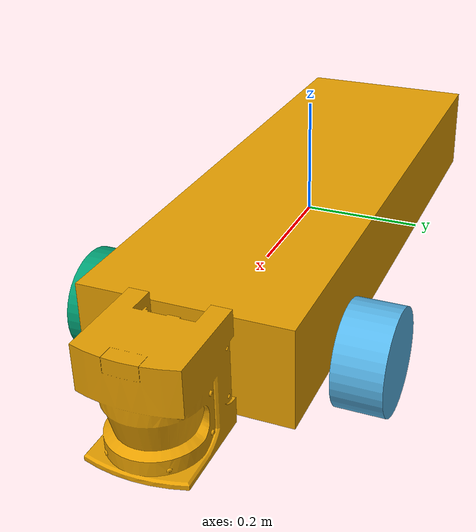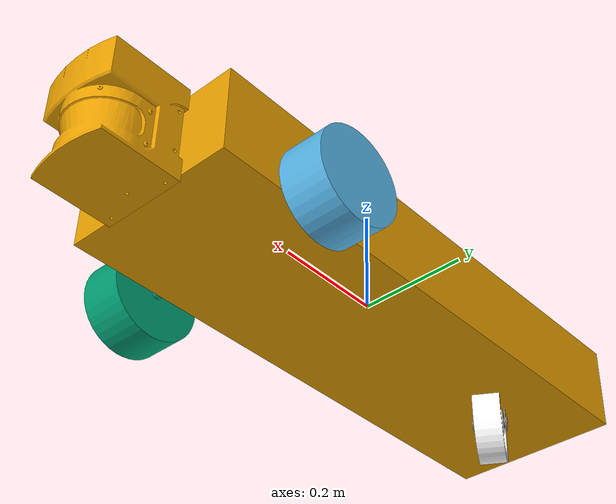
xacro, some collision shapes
<?xml version="1.0" encoding="utf-8"?>
<robot
  name="differentialRobot"  xmlns:xacro="http://www.ros.org/wiki/xacro">

  <xacro:include filename="$(find robot_description)/urdf/differential/macros.xacro" />

  <xacro:property name="PI" value="3.1415926535897931"/>

  <xacro:property name="base_X" value="1.0"/>
  <xacro:property name="base_Y" value="0.33"/>
  <xacro:property name="base_Z" value="0.16"/>
  <xacro:property name="base_Mass" value="20"/>

  <xacro:property name="laser_X" value="0.156"/>
  <xacro:property name="laser_Y" value="0.155"/>
  <xacro:property name="laser_Z" value="0.185"/>

  <xacro:property name="wheel_Width" value="0.1"/>
  <xacro:property name="wheel_Radius" value="0.11007"/>
  <xacro:property name="wheelPos_X" value="0.32"/>
  <xacro:property name="wheelPos_Z" value="-0.065"/>
  <xacro:property name="wheelMass" value="5"/>

   <link name="base_link">

    <visual>
      <origin xyz="0 0 0" rpy="0 0 0"/>
      <geometry>
         <mesh
          filename="package://robot_description/meshes/base_link.STL" />
      </geometry>
    </visual>

     <collision>
      <origin xyz="0 0 0" rpy="0 0 0"/>
      <geometry>
	      <box size="${base_X} ${base_Y} ${base_Z}"/>
      </geometry>
    </collision>

    <inertial>
      <origin xyz="0 0 0" rpy="0 0 0"/>
      <mass value="${base_Mass}"/>
      <box_inertia m="${base_Mass}" x="${base_X}" y="${base_Y}" z="${base_Z}"/>
    </inertial>

  </link>

  <wheel lr="left" tY="1"/>
  <wheel lr="right" tY="-1"/>

<link
    name="base_c_link">
    <inertial>
      <origin
        xyz="5.5511E-17 0.002282 4.7425E-17"
        rpy="0 0 0" />
      <mass
        value="0.53523" />
      <inertia
        ixx="0.00052562"
        ixy="4.0805E-21"
        ixz="3.7312E-19"
        iyy="0.0012519"
        iyz="-9.5907E-21"
        izz="0.000729" />
    </inertial>
    <visual>
      <origin
        xyz="0 0 0"
        rpy="0 0 0" />
      <geometry>
        <mesh
          filename="package://robot_description/meshes/base_c_link.STL" />
      </geometry>
      <material
        name="">
        <color
          rgba="0.64706 0.61961 0.58431 1" />
      </material>
    </visual>
    <collision>
      <origin
        xyz="0 0 0"
        rpy="0 0 0" />
      <geometry>
        <mesh
          filename="package://robot_description/meshes/base_c_link.STL" />
      </geometry>
    </collision>
  </link>
  <joint
    name="base_c_joint"
    type="fixed">
    <origin
      xyz="-0.36 0 0.010238"
      rpy="1.5708 0 0" />
    <parent
      link="base_link" />
    <child
      link="base_c_link" />
    <axis
      xyz="0 0 0" />
  </joint>
  <link
    name="fork_c_link">
    <inertial>
      <origin
        xyz="-0.018778 -0.039352 7.4319E-09"
        rpy="0 0 0" />
      <mass
        value="0.34679" />
      <inertia
        ixx="0.00062753"
        ixy="-0.00012722"
        ixz="-1.2248E-10"
        iyy="0.00044283"
        iyz="-4.7433E-11"
        izz="0.00063004" />
    </inertial>
    <visual>
      <origin
        xyz="0 0 0"
        rpy="0 0 0" />
      <geometry>
        <mesh
          filename="package://robot_description/meshes/fork_c_link.STL" />
      </geometry>
      <material
        name="">
        <color
          rgba="0.64706 0.61961 0.58431 1" />
      </material>
    </visual>
    <collision>
      <origin
        xyz="0 0 0"
        rpy="0 0 0" />
      <geometry>
        <mesh
          filename="package://robot_description/meshes/fork_c_link.STL" />
      </geometry>
    </collision>
  </link>
  <joint
    name="fork_c_joint"
    type="continuous">
    <origin
      xyz="0 0 0"
      rpy="3.1416 -0.52774 3.1416" />
    <parent
      link="base_c_link" />
    <child
      link="fork_c_link" />
    <axis
      xyz="0 1 0" />
  </joint>
  <link
    name="pin_c_link">
    <inertial>
      <origin
        xyz="1.7486E-15 5.5511E-17 1.3878E-17"
        rpy="0 0 0" />
      <mass
        value="0.09369" />
      <inertia
        ixx="2.8522E-06"
        ixy="-1.9588E-20"
        ixz="-1.319E-19"
        iyy="3.6098E-05"
        iyz="-6.088E-22"
        izz="3.6098E-05" />
    </inertial>
    <visual>
      <origin
        xyz="0 0 0"
        rpy="0 0 0" />
      <geometry>
        <mesh
          filename="package://robot_description/meshes/pin_c_link.STL" />
      </geometry>
      <material
        name="">
        <color
          rgba="0.64706 0.61961 0.58431 1" />
      </material>
    </visual>
    <collision>
      <origin
        xyz="0 0 0"
        rpy="0 0 0" />
      <geometry>
        <mesh
          filename="package://robot_description/meshes/pin_c_link.STL" />
      </geometry>
    </collision>
  </link>
  <joint
    name="pin_c_joint"
    type="fixed">
    <origin
      xyz="-0.042 -0.11024 0"
      rpy="1.5646 1.5708 0" />
    <parent
      link="fork_c_link" />
    <child
      link="pin_c_link" />
    <axis
      xyz="0 0 0" />
  </joint>
  <link
    name="bearing_c_link">
    <inertial>
      <origin
        xyz="2.0262E-15 6.9389E-17 -1.6653E-16"
        rpy="0 0 0" />
      <mass
        value="0.024819" />
      <inertia
        ixx="1.8031E-06"
        ixy="2.1178E-20"
        ixz="1.6782E-20"
        iyy="8.266E-06"
        iyz="-7.2222E-35"
        izz="8.266E-06" />
    </inertial>
    <visual>
      <origin
        xyz="0 0 0"
        rpy="0 0 0" />
      <geometry>
        <mesh
          filename="package://robot_description/meshes/bearing_c_link.STL" />
      </geometry>
      <material
        name="">
        <color
          rgba="0.64706 0.61961 0.58431 1" />
      </material>
    </visual>
    <collision>
      <origin
        xyz="0 0 0"
        rpy="0 0 0" />
      <geometry>
        <mesh
          filename="package://robot_description/meshes/bearing_c_link.STL" />
      </geometry>
    </collision>
  </link>
  <joint
    name="bearing_c_joint"
    type="continuous">
    <origin
      xyz="0 0 0"
      rpy="-1.5646 0 0" />
    <parent
      link="pin_c_link" />
    <child
      link="bearing_c_link" />
    <axis
      xyz="1 0 0" />
  </joint>
  <link
    name="wheel_c_link">
    <inertial>
      <origin
        xyz="2.2204E-16 4.1633E-17 1.9706E-15"
        rpy="0 0 0" />
      <mass
        value="0.56957" />
      <inertia
        ixx="0.00097832"
        ixy="-2.8766E-20"
        ixz="-4.3368E-19"
        iyy="0.00097832"
        iyz="-2.981E-18"
        izz="0.0017885" />
    </inertial>
    <visual>
      <origin
        xyz="0 0 0"
        rpy="0 0 0" />
      <geometry>
        <mesh
          filename="package://robot_description/meshes/wheel_c_link.STL" />
      </geometry>
      <material
        name="">
        <color
          rgba="1 1 1 1" />
      </material>
    </visual>
    <collision>
      <origin
        xyz="0 0 0"
        rpy="0 0 0" />
      <geometry>
        <mesh
          filename="package://robot_description/meshes/wheel_c_link.STL" />
      </geometry>
    </collision>
  </link>
  <joint
    name="wheel_c_joint"
    type="continuous">
    <origin
      xyz="0 0 0"
      rpy="3.1416 1.5708 -3.1416" />
    <parent
      link="bearing_c_link" />
    <child
      link="wheel_c_link" />
    <axis
      xyz="0 0 1" />
  </joint>

  <link name="hokuyo_link">
    <visual>
      <origin xyz="0 0 0" rpy="1.5708 0 1.5708" />
      <geometry>
        <mesh
          filename="package://robot_description/meshes/laser_sick_link.STL" />
      </geometry>
    </visual>
  </link>

  <joint name="hokuyo_joint" type="fixed">
    <axis xyz="0 1 0" />
    <origin xyz="${(base_X/2)} 0 0" rpy="0 0 0"/>
    <parent link="base_link"/>
    <child link="hokuyo_link"/>
  </joint>

 <gazebo>
    <plugin name="differential_drive_controller" filename="libgazebo_ros_diff_drive.so">
      <leftJoint>left_wheel_joint</leftJoint>
      <rightJoint>right_wheel_joint</rightJoint>
      <robotBaseFrame>base_link</robotBaseFrame>
      <wheelSeparation>${wheel_Width + base_Y}</wheelSeparation>
      <wheelDiameter>${wheel_Radius*2}</wheelDiameter>
      <publishWheelJointState>true</publishWheelJointState>
    </plugin>
 </gazebo>

 <gazebo>
    <plugin name="joint_state_publisher" filename="libgazebo_ros_joint_state_publisher.so">
      <jointName>fork_c_joint, wheel_c_joint, bearing_c_joint</jointName>
    </plugin>
  </gazebo>

 <gazebo reference="hokuyo_link">
    <sensor type="ray" name="hokuyo">
      <pose>0 0 0 0 0 0</pose>
      <visualize>false</visualize>
      <update_rate>40</update_rate>
      <ray>
        <scan>
          <horizontal>
            <samples>720</samples>
            <resolution>1</resolution>
            <min_angle>-1.570796</min_angle>
            <max_angle>1.570796</max_angle>
          </horizontal>
        </scan>
        <range>
          <min>0.10</min>
          <max>30.0</max>
          <resolution>0.01</resolution>
        </range>
      </ray>
      <plugin name="gpu_laser" filename="libgazebo_ros_laser.so">
        <topicName>/scan</topicName>
        <frameName>hokuyo_link</frameName>
      </plugin>
    </sensor>
  </gazebo>

</robot>

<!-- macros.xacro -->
<robot>
     <macro name="cylinder_inertia" params="m r h">
        <inertia  ixx="${m*(3*r*r+h*h)/12}" ixy = "0" ixz = "0"
                  iyy="${m*(3*r*r+h*h)/12}" iyz = "0"
                  izz="${m*r*r/2}" />
      </macro>

      <macro name="box_inertia" params="m x y z">
        <inertia  ixx="${m*(y*y+z*z)/12}" ixy = "0" ixz = "0"
                  iyy="${m*(x*x+z*z)/12}" iyz = "0"
                  izz="${m*(x*x+z*z)/12}" />
      </macro>

      <macro name="sphere_inertia" params="m r">
        <inertia  ixx="${2*m*r*r/5}" ixy = "0" ixz = "0"
                  iyy="${2*m*r*r/5}" iyz = "0"
                  izz="${2*m*r*r/5}" />
      </macro>

      <macro name="wheel" params="lr tY">
       <link name="${lr}_wheel_link">
        <collision>
          <origin xyz="0 0 0" rpy="0 ${PI/2} ${(-PI/2)*tY}" />
          <geometry>
           <cylinder length="${wheel_Width}" radius="${wheel_Radius}"/>
          </geometry>
        </collision>

        <visual>
          <origin xyz="0 0 0" rpy="0 ${PI/2} ${(-PI/2)*tY}" />
          <geometry>
           <mesh filename="package://robot_description/meshes/${lr}_wheel_link.STL" />
          </geometry>
        </visual>

        <inertial>
          <origin xyz="0 0 0" rpy="0 ${PI/2} ${(-PI/2)*tY}" />
          <mass value="${wheelMass}"/>
          <cylinder_inertia m="${wheelMass}" r="${wheel_Radius}" h="${wheel_Width}"/>
        </inertial>
       </link>

       <joint name="${lr}_wheel_joint" type="continuous">
          <parent link="base_link"/>
          <child link="${lr}_wheel_link"/>
          <origin xyz="${wheelPos_X} ${tY*(base_Y/2)} ${wheelPos_Z}" rpy="0 0 0" />
          <axis xyz="0 1 0" rpy="0 0 0" />
          <limit effort="100" velocity="100"/>
          <joint_properties damping="0.0" friction="0.0"/>
        </joint>

     </macro>

</robot>
